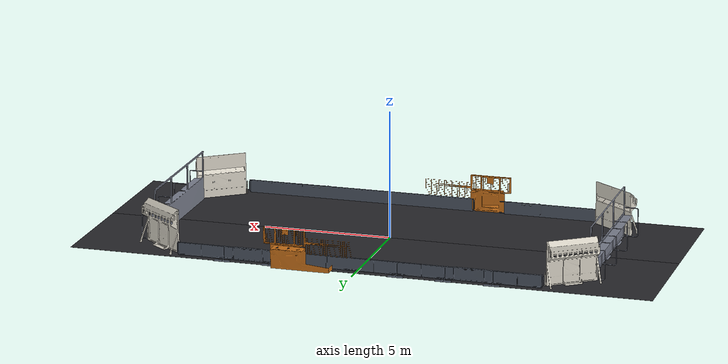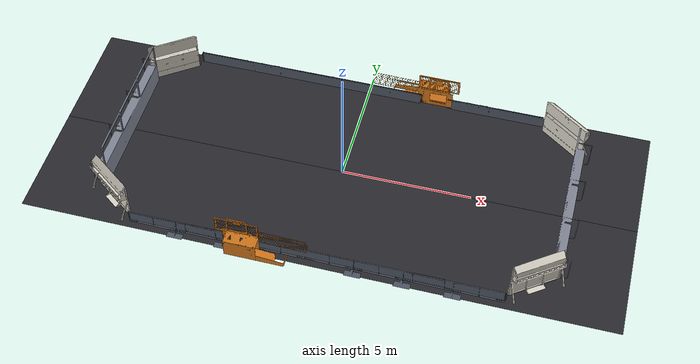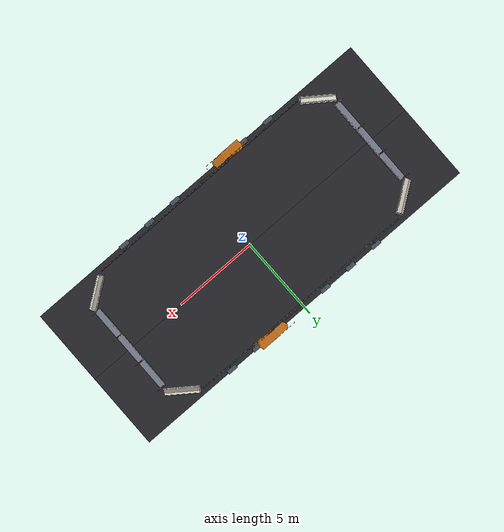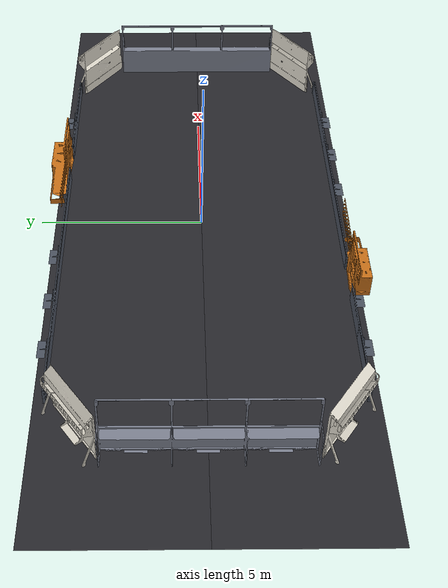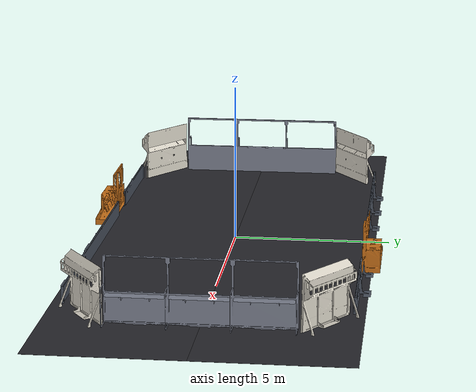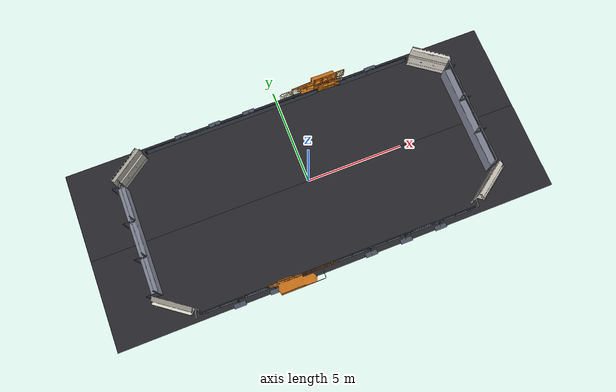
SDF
<sdf version="1.8">
 <world name="reefscape">
  <scene>
   <ambient>0.4 0.4 0.4 1</ambient>
   <background>0.35 0.38 0.45 1</background>
   <shadows>true</shadows>
  </scene>
  <light type="directional" name="sun">
   <pose>0 0 20 0 0 0</pose>
   <diffuse>0.9 0.9 0.9 1</diffuse>
   <specular>0.1 0.1 0.1 1</specular>
   <direction>-0.3 0.2 -0.9</direction>
  </light>
  <light type="point" name="fill_light_blue">
   <cast_shadows>false</cast_shadows>
   <pose>-5 0 6 0 0 0</pose>
   <diffuse>0.8 0.8 0.8 1</diffuse>
   <specular>0.2 0.2 0.2 1</specular>
   <attenuation>
    <range>40</range>
    <constant>0.3</constant>
    <linear>0.05</linear>
    <quadratic>0.01</quadratic>
   </attenuation>
  </light>
  <light type="point" name="fill_light_red">
   <cast_shadows>false</cast_shadows>
   <pose>5 0 6 0 0 0</pose>
   <diffuse>0.8 0.8 0.8 1</diffuse>
   <specular>0.2 0.2 0.2 1</specular>
   <attenuation>
    <range>40</range>
    <constant>0.3</constant>
    <linear>0.05</linear>
    <quadratic>0.01</quadratic>
   </attenuation>
  </light>
  <light type="point" name="fill_light_center">
   <cast_shadows>false</cast_shadows>
   <pose>0 0 7 0 0 0</pose>
   <diffuse>0.8 0.8 0.8 1</diffuse>
   <specular>0.2 0.2 0.2 1</specular>
   <attenuation>
    <range>40</range>
    <constant>0.3</constant>
    <linear>0.05</linear>
    <quadratic>0.01</quadratic>
   </attenuation>
  </light>
  <include>
   <uri>model://coral_station</uri>
   <name>blue_coral_station_1</name>
   <pose>-7.9550 3.3592 0 0 0 -2.51345</pose>
  </include>
  <include>
   <uri>model://coral_station</uri>
   <name>blue_coral_station_3</name>
   <pose>-7.9146 -3.4489 0 0 0 -0.62814</pose>
  </include>
  <include>
   <uri>model://coral_station</uri>
   <name>red_coral_station_1</name>
   <pose>7.9487 -3.3473 0 0 0 0.62814</pose>
  </include>
  <include>
   <uri>model://coral_station</uri>
   <name>red_coral_station_3</name>
   <pose>7.9146 3.4489 0 0 0 2.51345</pose>
  </include>
  <include>
   <uri>model://processor</uri>
   <name>blue_processor</name>
   <pose>-2.8094 -4.2886 0 0 0 -3.14159</pose>
  </include>
  <include><uri>model://processor</uri><name>red_processor</name><pose>2.8094 4.2886 0 0 0 0</pose></include>
  <include>
   <uri>model://field_wall</uri>
   <name>blue_field_wall</name>
   <pose>0 -4.2371 0 0 0 -3.14159</pose>
  </include>
  <include><uri>model://field_wall</uri><name>red_field_wall</name><pose>0 4.2371 0 0 0 0</pose></include>
  <include>
   <uri>model://driver_stations</uri>
   <name>blue_driver_stations</name>
   <pose>-8.4842 0 0 0 0 0</pose>
  </include>
  <include>
   <uri>model://driver_stations</uri>
   <name>red_driver_stations</name>
   <pose>8.4842 0 0 0 0 -3.14159</pose>
  </include>
  <include><uri>model://carpet</uri><name>blue_carpet</name><pose>0 -0.0040 0 0 0 0</pose></include>
  <include><uri>model://carpet</uri><name>red_carpet</name><pose>0 -4.5760 0 0 0 0</pose></include>
 </world>
</sdf>

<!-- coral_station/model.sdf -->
<sdf version="1.8">
  <model name="reefscape_coral_station">
    <static>true</static>

    <link name="link">
      <visual name="visual">
        <geometry>
          <mesh>
            <uri>meshes/coral_station.stl</uri>
            <scale>1 1 1</scale>
          </mesh>
        </geometry>
        <material>
          <ambient>0.42 0.41 0.39 1</ambient>
          <diffuse>0.85 0.83 0.78 1</diffuse>
        </material>
      </visual>

      <collision name="collision">
        <geometry>
          <mesh>
            <uri>meshes/coral_station.stl</uri>
            <scale>1 1 1</scale>
          </mesh>
        </geometry>
      </collision>
    </link>
  </model>
</sdf>

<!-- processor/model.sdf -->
<sdf version="1.8">
  <model name="reefscape_processor">
    <static>true</static>

    <link name="link">
      <visual name="visual">
        <geometry>
          <mesh>
            <uri>meshes/processor.stl</uri>
            <scale>1 1 1</scale>
          </mesh>
        </geometry>
        <material>
          <ambient>0.40 0.22 0.05 1</ambient>
          <diffuse>0.80 0.45 0.10 1</diffuse>
        </material>
      </visual>

      <collision name="collision">
        <geometry>
          <mesh>
            <uri>meshes/processor.stl</uri>
            <scale>1 1 1</scale>
          </mesh>
        </geometry>
      </collision>
    </link>
  </model>
</sdf>

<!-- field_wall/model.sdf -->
<sdf version="1.8">
  <model name="reefscape_field_wall">
    <static>true</static>

    <link name="link">
      <visual name="visual">
        <geometry>
          <mesh>
            <uri>meshes/field_wall.stl</uri>
            <scale>1 1 1</scale>
          </mesh>
        </geometry>
        <material>
          <ambient>0.15 0.16 0.19 1</ambient>
          <diffuse>0.30 0.33 0.38 1</diffuse>
        </material>
      </visual>

      <collision name="collision">
        <geometry>
          <mesh>
            <uri>meshes/field_wall.stl</uri>
            <scale>1 1 1</scale>
          </mesh>
        </geometry>
      </collision>
    </link>
  </model>
</sdf>

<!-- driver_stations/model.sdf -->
<sdf version="1.8">
  <model name="reefscape_driver_stations">
    <static>true</static>

    <link name="link">
      <visual name="visual">
        <geometry>
          <mesh>
            <uri>meshes/driver_stations.stl</uri>
            <scale>1 1 1</scale>
          </mesh>
        </geometry>
        <material>
          <ambient>0.25 0.26 0.29 1</ambient>
          <diffuse>0.50 0.52 0.58 1</diffuse>
        </material>
      </visual>

      <collision name="collision">
        <geometry>
          <mesh>
            <uri>meshes/driver_stations.stl</uri>
            <scale>1 1 1</scale>
          </mesh>
        </geometry>
      </collision>
    </link>
  </model>
</sdf>

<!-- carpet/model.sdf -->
<sdf version="1.8">
  <model name="reefscape_carpet">
    <static>true</static>

    <link name="link">
      <visual name="visual">
        <geometry>
          <mesh>
            <uri>meshes/carpet.stl</uri>
            <scale>1 1 1</scale>
          </mesh>
        </geometry>
        <material>
          <ambient>0.08 0.08 0.09 1</ambient>
          <diffuse>0.16 0.16 0.18 1</diffuse>
        </material>
      </visual>

      <collision name="collision">
        <geometry>
          <mesh>
            <uri>meshes/carpet.stl</uri>
            <scale>1 1 1</scale>
          </mesh>
        </geometry>
      </collision>
    </link>
  </model>
</sdf>
